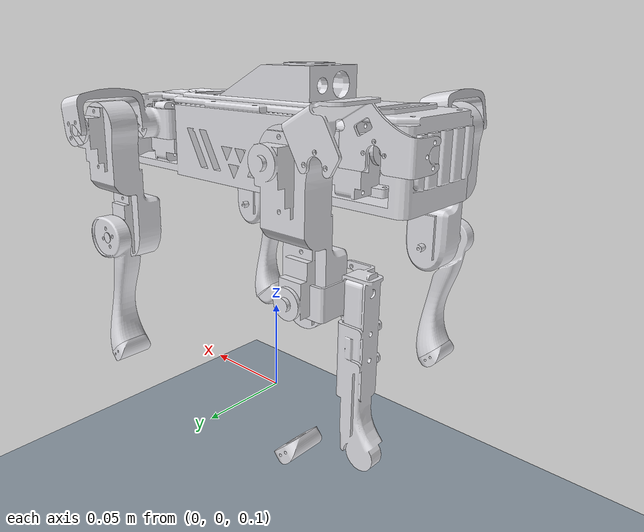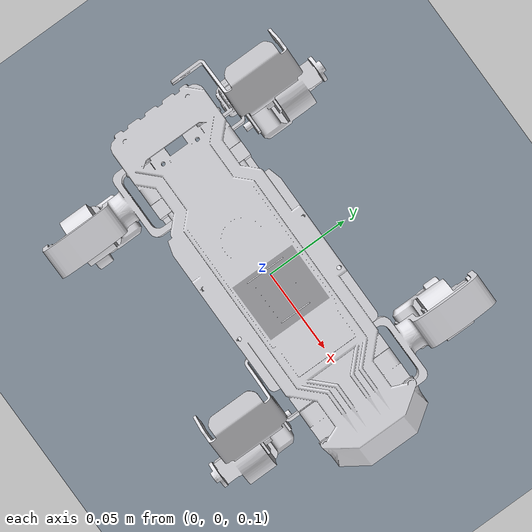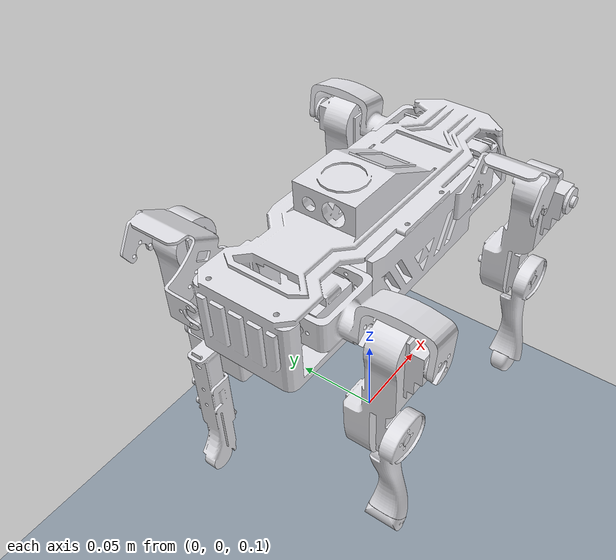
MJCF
<mujoco model="sdgo">
  <compiler angle="radian" meshdir="../meshes/"/>
  <option timestep="0.002"/>

  <default>
    <default class="robot">
      <default class="motor">
        <joint damping="0.05" armature="0.01" frictionloss="0.05"/>
        <motor gear="1"/>
      </default>
      <default class="visual">
        <geom material="visualgeom" contype="0" conaffinity="0" group="2" />
      </default>
      <default class="collision">
        <geom material="collision_material" condim="3" contype="1" conaffinity="1" group="1" solref="0.005 1" friction="1 0.01 0.01" />
        <equality solimp="0.99 0.999 1e-05" solref="0.005 1" />
      </default>
    </default>
  </default>

  <asset>
    <material name="visualgeom" rgba="0.89 0.89 0.91 1" />
    <material name="collision_material" rgba="0.0 0.4 0.8 0.2" />
    <texture type="2d" name="checker" builtin="checker" rgb1="0.2 0.3 0.4" rgb2="0.9 0.9 0.9" width="500" height="500"/>
    <material name="checker_mat" texture="checker" specular="1" shininess="1" texrepeat="15 15"/>

    <!-- Mesh Assets from URDF -->
    <mesh name="base" file="base.STL" />
    <mesh name="body" file="body.STL" />

    <mesh name="fr_hip" file="fr_hip.STL" />
    <mesh name="fr_thigh" file="fr_thigh.STL" />
    <mesh name="fr_calf" file="fr_calf.STL" />
    <mesh name="fr_foot" file="fr_foot.STL" />

    <mesh name="fl_hip" file="fl_hip.STL" />
    <mesh name="fl_thigh" file="fl_thigh.STL" />
    <mesh name="fl_calf" file="fl_calf.STL" />
    <mesh name="fl_foot" file="fl_foot.STL" />

    <mesh name="br_hip" file="br_hip.STL" />
    <mesh name="br_thigh" file="br_thigh.STL" />
    <mesh name="br_calf" file="br_calf.STL" />
    <mesh name="br_foot" file="br_foot.STL" />

    <mesh name="bl_hip" file="bl_hip.STL" />
    <mesh name="bl_thigh" file="bl_thigh.STL" />
    <mesh name="bl_calf" file="bl_calf.STL" />
    <mesh name="bl_foot" file="bl_foot.STL" />
  </asset>

  <worldbody>
    <geom name="floor" type="plane" size="10 10 0.1" pos="0 0 0" material="checker_mat"/>
    <light directional="true" pos="-0.5 0.5 3" dir="0 0 -1"/>

    <!-- Base / Body (Combined because joint is fixed) -->
    <body name="base" pos="0 0 0.25" childclass="robot">
      <freejoint name="floating_base" />
      <!-- Combined mass of base (0.0027) + body (0.18575) approximately -->
      <inertial pos="-0.0034 -0.00025 -0.012" mass="0.188" fullinertia="7.6e-5 5.2e-4 5.5e-4 1.7e-6 9.3e-6 -3.0e-8" />

      <geom name="base_vis" type="mesh" mesh="base" class="visual" />
      <geom name="base_col" type="mesh" mesh="base" class="collision" />
      <geom name="body_vis" type="mesh" mesh="body" class="visual" />
      <geom name="body_col" type="mesh" mesh="body" class="collision" />

      <site name="imu_site" pos="0 0 0" size="0.005" rgba="1 0 0 1"/>

      <!-- FRONT RIGHT LEG -->
      <body name="fr_hip" pos="0.062526 -0.02085 0">
        <inertial pos="0.0023 -0.025 0.0055" mass="0.0106" fullinertia="4.1e-6 1.5e-6 4.3e-6 -2.9e-10 -1.5e-8 8.9e-7" />
        <joint name="fr_hip_joint" axis="1 0 0" range="-0.8 0.8" />
        <geom name="fr_hip_vis" type="mesh" mesh="fr_hip" class="visual" />
        <geom name="fr_hip_col" type="mesh" mesh="fr_hip" class="collision" />

        <body name="fr_thigh" pos="0.00031911 -0.03686 0">
          <inertial pos="-0.00005 0.0027 -0.028" mass="0.045" fullinertia="1.7e-5 1.6e-5 4.2e-6 3.2e-9 -1.5e-8 3.0e-6" />
          <joint name="fr_thigh_joint" axis="0 1 0" range="-1 2" />
          <geom name="fr_thigh_vis" type="mesh" mesh="fr_thigh" class="visual" />
          <geom name="fr_thigh_col" type="mesh" mesh="fr_thigh" class="collision" />

          <body name="fr_calf" pos="-1.45e-05 0 -0.059049">
            <inertial pos="0.0005 -0.0014 -0.035" mass="0.0128" fullinertia="7.4e-6 7.6e-6 5.9e-7 3.9e-9 2.9e-7 5.6e-7" />
            <joint name="fr_calf_joint" axis="0 1 0" range="-2.69 -0.5" />
            <geom name="fr_calf_vis" type="mesh" mesh="fr_calf" class="visual" />
            <geom name="fr_calf_col" type="mesh" mesh="fr_calf" class="collision" />

            <body name="fr_foot" pos="0 0 -0.065878">
              <inertial pos="-0.002 -0.00001 -0.002" mass="0.0016" fullinertia="7.5e-8 3.8e-8 7.7e-8 3.2e-10 1.2e-8 1.1e-10" />
              <geom name="fr_foot_vis" type="mesh" mesh="fr_foot" class="visual" />
              <geom name="fr_foot_col" type="mesh" mesh="fr_foot" class="collision" />
            </body>
          </body>
        </body>
      </body>

      <!-- FRONT LEFT LEG -->
      <body name="fl_hip" pos="0.062526 0.020224 0">
        <inertial pos="0.0023 0.0258 0.0055" mass="0.0106" fullinertia="4.1e-6 1.5e-6 4.3e-6 2.9e-10 -1.5e-8 -8.9e-7" />
        <joint name="fl_hip_joint" axis="1 0 0" range="-0.8 0.8" />
        <geom name="fl_hip_vis" type="mesh" mesh="fl_hip" class="visual" />
        <geom name="fl_hip_col" type="mesh" mesh="fl_hip" class="collision" />

        <body name="fl_thigh" pos="0.00031911 0.037482 0">
          <inertial pos="-0.00005 -0.0027 -0.028" mass="0.045" fullinertia="1.7e-5 1.6e-5 4.2e-6 -2.6e-9 -1.4e-8 -2.9e-6" />
          <joint name="fl_thigh_joint" axis="0 1 0" range="-1 2" />
          <geom name="fl_thigh_vis" type="mesh" mesh="fl_thigh" class="visual" />
          <geom name="fl_thigh_col" type="mesh" mesh="fl_thigh" class="collision" />

          <body name="fl_calf" pos="-1.45e-05 0 -0.059049">
            <inertial pos="0.0005 0.0014 -0.035" mass="0.0128" fullinertia="7.4e-6 7.6e-6 5.9e-7 -3.9e-9 2.9e-7 -5.6e-7" />
            <joint name="fl_calf_joint" axis="0 1 0" range="-2.69 -0.5" />
            <geom name="fl_calf_vis" type="mesh" mesh="fl_calf" class="visual" />
            <geom name="fl_calf_col" type="mesh" mesh="fl_calf" class="collision" />

            <body name="fl_foot" pos="-0.00030458 0 -0.065887">
              <inertial pos="-0.0021 0.00001 -0.0022" mass="0.0016" fullinertia="7.5e-8 3.8e-8 7.7e-8 -3.2e-10 1.2e-8 -1.1e-10" />
              <geom name="fl_foot_vis" type="mesh" mesh="fl_foot" class="visual" />
              <geom name="fl_foot_col" type="mesh" mesh="fl_foot" class="collision" />
            </body>
          </body>
        </body>
      </body>

      <!-- BACK RIGHT LEG -->
      <body name="br_hip" pos="-0.05616 -0.02085 0">
        <inertial pos="-0.0096 -0.0258 0.0055" mass="0.0106" fullinertia="4.1e-6 1.5e-6 4.3e-6 -2.9e-10 -1.5e-8 8.9e-7" />
        <joint name="br_hip_joint" axis="1 0 0" range="-0.8 0.8" />
        <geom name="br_hip_vis" type="mesh" mesh="br_hip" class="visual" />
        <geom name="br_hip_col" type="mesh" mesh="br_hip" class="collision" />

        <body name="br_thigh" pos="-0.011685 -0.03686 0">
          <inertial pos="-0.00005 0.002 0.028" mass="0.045" fullinertia="1.7e-5 1.6e-5 4.2e-6 3.2e-9 -1.5e-8 3.0e-6" />
          <joint name="br_thigh_joint" axis="0 1 0" range="-1 2" />
          <geom name="br_thigh_vis" type="mesh" mesh="br_thigh" class="visual" />
          <geom name="br_thigh_col" type="mesh" mesh="br_thigh" class="collision" />

          <body name="br_calf" pos="0 0 -0.059063">
            <inertial pos="0.0007 -0.0021 -0.035" mass="0.0128" fullinertia="7.4e-6 7.6e-6 5.9e-7 1.1e-9 3.3e-7 5.6e-7" />
            <joint name="br_calf_joint" axis="0 1 0" range="-2.69 -0.5" />
            <geom name="br_calf_vis" type="mesh" mesh="br_calf" class="visual" />
            <geom name="br_calf_col" type="mesh" mesh="br_calf" class="collision" />

            <body name="br_foot" pos="0 0 -0.065864">
              <inertial pos="-0.0021 -0.0006 -0.0022" mass="0.0016" fullinertia="7.5e-8 3.8e-8 7.7e-8 3.2e-10 1.2e-8 1.1e-10" />
              <geom name="br_foot_vis" type="mesh" mesh="br_foot" class="visual" />
              <geom name="br_foot_col" type="mesh" mesh="br_foot" class="collision" />
            </body>
          </body>
        </body>
      </body>

      <!-- BACK LEFT LEG -->
      <body name="bl_hip" pos="-0.067842 0.02085 0">
         <inertial pos="0.002 0.0258 0.0055" mass="0.0106" fullinertia="4.1e-6 1.5e-6 4.3e-6 2.9e-10 -1.5e-8 -8.9e-7" />
        <joint name="bl_hip_joint" axis="1 0 0" range="-0.8 0.8" />
        <geom name="bl_hip_vis" type="mesh" mesh="bl_hip" class="visual" />
        <geom name="bl_hip_col" type="mesh" mesh="bl_hip" class="collision" />

        <body name="bl_thigh" pos="0 0.036855 0">
           <inertial pos="-0.00006 -0.002 0.028" mass="0.045" fullinertia="1.7e-5 1.6e-5 4.2e-6 -2.6e-9 -1.4e-8 -2.9e-6" />
          <joint name="bl_thigh_joint" axis="0 1 0" range="-1 2" />
          <geom name="bl_thigh_vis" type="mesh" mesh="bl_thigh" class="visual" />
          <geom name="bl_thigh_col" type="mesh" mesh="bl_thigh" class="collision" />

          <body name="bl_calf" pos="0 0 -0.059063">
             <inertial pos="0.0007 0.002 -0.035" mass="0.0128" fullinertia="7.4e-6 7.6e-6 5.9e-7 -1.1e-9 3.3e-7 -5.6e-7" />
            <joint name="bl_calf_joint" axis="0 1 0" range="-2.69 -0.5" />
            <geom name="bl_calf_vis" type="mesh" mesh="bl_calf" class="visual" />
            <geom name="bl_calf_col" type="mesh" mesh="bl_calf" class="collision" />

            <body name="bl_foot" pos="0 0 -0.065864">
               <inertial pos="-0.0021 0.0006 -0.0022" mass="0.0016" fullinertia="7.5e-8 3.8e-8 7.7e-8 -3.2e-10 1.2e-8 -1.1e-10" />
              <geom name="bl_foot_vis" type="mesh" mesh="bl_foot" class="visual" />
              <geom name="bl_foot_col" type="mesh" mesh="bl_foot" class="collision" />
            </body>
          </body>
        </body>
      </body>

    </body>
  </worldbody>

  <actuator>
    <motor name="fr_hip_joint" joint="fr_hip_joint" class="motor" ctrlrange="-0.45 0.45"/>
    <motor name="fr_thigh_joint" joint="fr_thigh_joint" class="motor" ctrlrange="-0.45 0.45"/>
    <motor name="fr_calf_joint" joint="fr_calf_joint" class="motor" ctrlrange="-0.45 0.45"/>
    <motor name="fl_hip_joint" joint="fl_hip_joint" class="motor" ctrlrange="-0.45 0.45"/>
    <motor name="fl_thigh_joint" joint="fl_thigh_joint" class="motor" ctrlrange="-0.45 0.45"/>
    <motor name="fl_calf_joint" joint="fl_calf_joint" class="motor" ctrlrange="-0.45 0.45"/>
    <motor name="br_hip_joint" joint="br_hip_joint" class="motor" ctrlrange="-0.45 0.45"/>
    <motor name="br_thigh_joint" joint="br_thigh_joint" class="motor" ctrlrange="-0.45 0.45"/>
    <motor name="br_calf_joint" joint="br_calf_joint" class="motor" ctrlrange="-0.45 0.45"/>
    <motor name="bl_hip_joint" joint="bl_hip_joint" class="motor" ctrlrange="-0.45 0.45"/>
    <motor name="bl_thigh_joint" joint="bl_thigh_joint" class="motor" ctrlrange="-0.45 0.45"/>
    <motor name="bl_calf_joint" joint="bl_calf_joint" class="motor" ctrlrange="-0.45 0.45"/>
  </actuator>

  <contact>
    <exclude body1="base" body2="fr_hip" />
    <exclude body1="fr_hip" body2="fr_thigh" />
    <exclude body1="fr_thigh" body2="fr_calf" />
    <exclude body1="fr_calf" body2="fr_foot" />

    <exclude body1="base" body2="fl_hip" />
    <exclude body1="fl_hip" body2="fl_thigh" />
    <exclude body1="fl_thigh" body2="fl_calf" />
    <exclude body1="fl_calf" body2="fl_foot" />

    <exclude body1="base" body2="br_hip" />
    <exclude body1="br_hip" body2="br_thigh" />
    <exclude body1="br_thigh" body2="br_calf" />
    <exclude body1="br_calf" body2="br_foot" />

    <exclude body1="base" body2="bl_hip" />
    <exclude body1="bl_hip" body2="bl_thigh" />
    <exclude body1="bl_thigh" body2="bl_calf" />
    <exclude body1="bl_calf" body2="bl_foot" />
  </contact>

  <sensor>
      <velocimeter name="base_vel" site="imu_site" />
      <accelerometer site="imu_site"/>
      <gyro site="imu_site"/>
  </sensor>

</mujoco>
